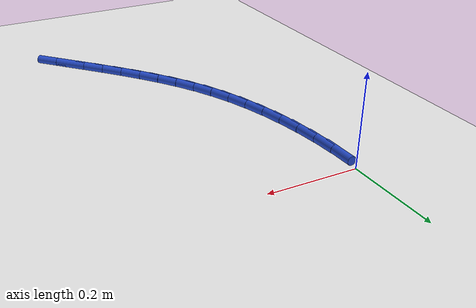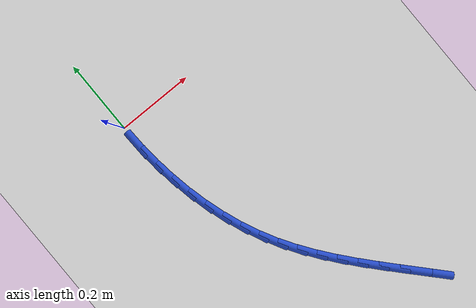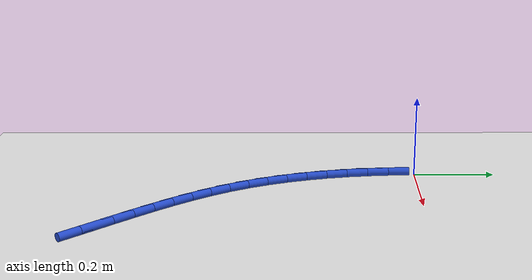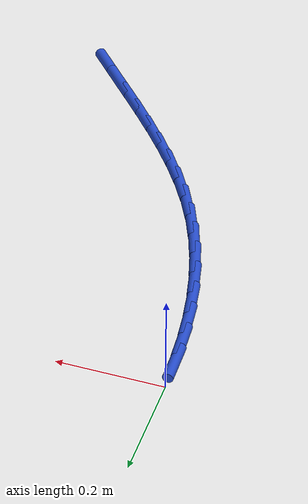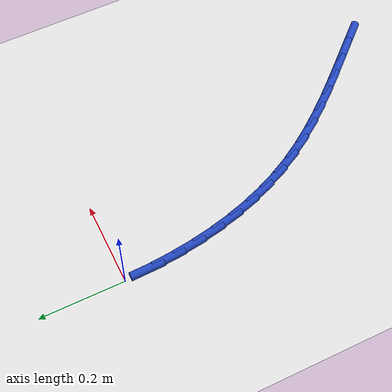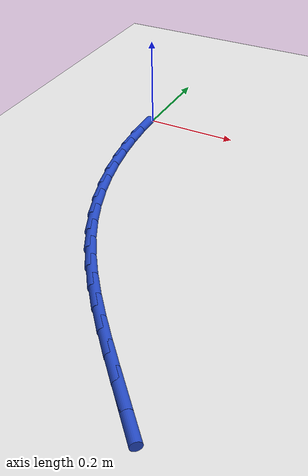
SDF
<sdf version="1.6">
 <world name="default">
  <model name="ground_plane">
   <static>1</static>
   <link name="link">
    <collision name="collision">
     <geometry><plane><normal>0 0 1</normal><size>100 100</size></plane></geometry>
     <surface><friction><ode><mu>100</mu><mu2>50</mu2></ode></friction></surface>
    </collision>
    <visual name="visual">
     <cast_shadows>0</cast_shadows>
     <geometry><plane><normal>0 0 1</normal><size>100 100</size></plane></geometry>
     <material>
      <script><uri>file://media/materials/scripts/gazebo.material</uri><name>Gazebo/WhiteGlow</name></script>
     </material>
    </visual>
   </link>
  </model>
  <model name="line">
   <link name="link_123">
    <pose>0.3677313444252999 -0.7721820259799056 0.01 0 1.57 -0.8282055518793434</pose>
    <collision name="collision">
     <geometry><cylinder><radius>0.01</radius><length>0.08</length></cylinder></geometry>
    </collision>
    <visual name="visual">
     <material>
      <script><name>Gazebo/Blue</name><uri>file://media/materials/scripts/gazebo.material</uri></script>
     </material>
     <geometry><cylinder><radius>0.01</radius><length>0.08</length></cylinder></geometry>
    </visual>
   </link>
   <link name="link_124">
    <pose>0.33121191077263623 -0.732394075769315 0.01 0 1.57 -0.8276868801476216</pose>
    <collision name="collision">
     <geometry><cylinder><radius>0.01</radius><length>0.08</length></cylinder></geometry>
    </collision>
    <visual name="visual">
     <material>
      <script><name>Gazebo/Blue</name><uri>file://media/materials/scripts/gazebo.material</uri></script>
     </material>
     <geometry><cylinder><radius>0.01</radius><length>0.08</length></cylinder></geometry>
    </visual>
   </link>
   <link name="link_125">
    <pose>0.29518391432368024 -0.6931823917233129 0.01 0 1.57 -0.8363177180756245</pose>
    <collision name="collision">
     <geometry><cylinder><radius>0.01</radius><length>0.08</length></cylinder></geometry>
    </collision>
    <visual name="visual">
     <material>
      <script><name>Gazebo/Blue</name><uri>file://media/materials/scripts/gazebo.material</uri></script>
     </material>
     <geometry><cylinder><radius>0.01</radius><length>0.08</length></cylinder></geometry>
    </visual>
   </link>
   <link name="link_126">
    <pose>0.2599840767782143 -0.6542020653483518 0.01 0 1.57 -0.8544663138964912</pose>
    <collision name="collision">
     <geometry><cylinder><radius>0.01</radius><length>0.08</length></cylinder></geometry>
    </collision>
    <visual name="visual">
     <material>
      <script><name>Gazebo/Blue</name><uri>file://media/materials/scripts/gazebo.material</uri></script>
     </material>
     <geometry><cylinder><radius>0.01</radius><length>0.08</length></cylinder></geometry>
    </visual>
   </link>
   <link name="link_127">
    <pose>0.22594911983602167 -0.6151081881508861 0.01 0 1.57 -0.8824621574039964</pose>
    <collision name="collision">
     <geometry><cylinder><radius>0.01</radius><length>0.08</length></cylinder></geometry>
    </collision>
    <visual name="visual">
     <material>
      <script><name>Gazebo/Blue</name><uri>file://media/materials/scripts/gazebo.material</uri></script>
     </material>
     <geometry><cylinder><radius>0.01</radius><length>0.08</length></cylinder></geometry>
    </visual>
   </link>
   <link name="link_128">
    <pose>0.19341576519688475 -0.5755558516373687 0.01 0 1.57 -0.9205380974450488</pose>
    <collision name="collision">
     <geometry><cylinder><radius>0.01</radius><length>0.08</length></cylinder></geometry>
    </collision>
    <visual name="visual">
     <material>
      <script><name>Gazebo/Blue</name><uri>file://media/materials/scripts/gazebo.material</uri></script>
     </material>
     <geometry><cylinder><radius>0.01</radius><length>0.08</length></cylinder></geometry>
    </visual>
   </link>
   <link name="link_129">
    <pose>0.16272073456058594 -0.5352001473142524 0.01 0 1.57 -0.9687380988037189</pose>
    <collision name="collision">
     <geometry><cylinder><radius>0.01</radius><length>0.08</length></cylinder></geometry>
    </collision>
    <visual name="visual">
     <material>
      <script><name>Gazebo/Blue</name><uri>file://media/materials/scripts/gazebo.material</uri></script>
     </material>
     <geometry><cylinder><radius>0.01</radius><length>0.08</length></cylinder></geometry>
    </visual>
   </link>
   <link name="link_130">
    <pose>0.1342007496269079 -0.4936961666879906 0.01 0 1.57 -1.0267947468002532</pose>
    <collision name="collision">
     <geometry><cylinder><radius>0.01</radius><length>0.08</length></cylinder></geometry>
    </collision>
    <visual name="visual">
     <material>
      <script><name>Gazebo/Blue</name><uri>file://media/materials/scripts/gazebo.material</uri></script>
     </material>
     <geometry><cylinder><radius>0.01</radius><length>0.08</length></cylinder></geometry>
    </visual>
   </link>
   <link name="link_131">
    <pose>0.10819253209563286 -0.4506990012650357 0.01 0 1.57 -1.0935116327149044</pose>
    <collision name="collision">
     <geometry><cylinder><radius>0.01</radius><length>0.08</length></cylinder></geometry>
    </collision>
    <visual name="visual">
     <material>
      <script><name>Gazebo/Blue</name><uri>file://media/materials/scripts/gazebo.material</uri></script>
     </material>
     <geometry><cylinder><radius>0.01</radius><length>0.08</length></cylinder></geometry>
    </visual>
   </link>
   <link name="link_132">
    <pose>0.08501693348622687 -0.4058861795461835 0.01 0 1.57 -1.1613236992462113</pose>
    <collision name="collision">
     <geometry><cylinder><radius>0.01</radius><length>0.08</length></cylinder></geometry>
    </collision>
    <visual name="visual">
     <material>
      <script><name>Gazebo/Blue</name><uri>file://media/materials/scripts/gazebo.material</uri></script>
     </material>
     <geometry><cylinder><radius>0.01</radius><length>0.08</length></cylinder></geometry>
    </visual>
   </link>
   <link name="link_133">
    <pose>0.06477492993621205 -0.3592460861536978 0.01 0 1.57 -1.2252870104454618</pose>
    <collision name="collision">
     <geometry><cylinder><radius>0.01</radius><length>0.08</length></cylinder></geometry>
    </collision>
    <visual name="visual">
     <material>
      <script><name>Gazebo/Blue</name><uri>file://media/materials/scripts/gazebo.material</uri></script>
     </material>
     <geometry><cylinder><radius>0.01</radius><length>0.08</length></cylinder></geometry>
    </visual>
   </link>
   <link name="link_134">
    <pose>0.047406804991956986 -0.3109942901958621 0.01 0 1.57 -1.285545575437058</pose>
    <collision name="collision">
     <geometry><cylinder><radius>0.01</radius><length>0.08</length></cylinder></geometry>
    </collision>
    <visual name="visual">
     <material>
      <script><name>Gazebo/Blue</name><uri>file://media/materials/scripts/gazebo.material</uri></script>
     </material>
     <geometry><cylinder><radius>0.01</radius><length>0.08</length></cylinder></geometry>
    </visual>
   </link>
   <link name="link_135">
    <pose>0.03284917461690104 -0.2613515459480953 0.01 0 1.57 -1.3424199749518293</pose>
    <collision name="collision">
     <geometry><cylinder><radius>0.01</radius><length>0.08</length></cylinder></geometry>
    </collision>
    <visual name="visual">
     <material>
      <script><name>Gazebo/Blue</name><uri>file://media/materials/scripts/gazebo.material</uri></script>
     </material>
     <geometry><cylinder><radius>0.01</radius><length>0.08</length></cylinder></geometry>
    </visual>
   </link>
   <link name="link_136">
    <pose>0.021038654774484317 -0.21053860768581878 0.01 0 1.57 -1.3962692189305264</pose>
    <collision name="collision">
     <geometry><cylinder><radius>0.01</radius><length>0.08</length></cylinder></geometry>
    </collision>
    <visual name="visual">
     <material>
      <script><name>Gazebo/Blue</name><uri>file://media/materials/scripts/gazebo.material</uri></script>
     </material>
     <geometry><cylinder><radius>0.01</radius><length>0.08</length></cylinder></geometry>
    </visual>
   </link>
   <link name="link_137">
    <pose>0.01191186142814623 -0.15877622968445138 0.01 0 1.57 -1.447471867400195</pose>
    <collision name="collision">
     <geometry><cylinder><radius>0.01</radius><length>0.08</length></cylinder></geometry>
    </collision>
    <visual name="visual">
     <material>
      <script><name>Gazebo/Blue</name><uri>file://media/materials/scripts/gazebo.material</uri></script>
     </material>
     <geometry><cylinder><radius>0.01</radius><length>0.08</length></cylinder></geometry>
    </visual>
   </link>
   <link name="link_138">
    <pose>0.005405410541326376 -0.10628516621941278 0.01 0 1.57 -1.4964136727162127</pose>
    <collision name="collision">
     <geometry><cylinder><radius>0.01</radius><length>0.08</length></cylinder></geometry>
    </collision>
    <visual name="visual">
     <material>
      <script><name>Gazebo/Blue</name><uri>file://media/materials/scripts/gazebo.material</uri></script>
     </material>
     <geometry><cylinder><radius>0.01</radius><length>0.08</length></cylinder></geometry>
    </visual>
   </link>
   <link name="link_139">
    <pose>0.0014559180774644095 -0.05328617156612261 0.01 0 1.57 -1.5434804978773602</pose>
    <collision name="collision">
     <geometry><cylinder><radius>0.01</radius><length>0.08</length></cylinder></geometry>
    </collision>
    <visual name="visual">
     <material>
      <script><name>Gazebo/Blue</name><uri>file://media/materials/scripts/gazebo.material</uri></script>
     </material>
     <geometry><cylinder><radius>0.01</radius><length>0.08</length></cylinder></geometry>
    </visual>
   </link>
  </model>
 </world>
</sdf>
